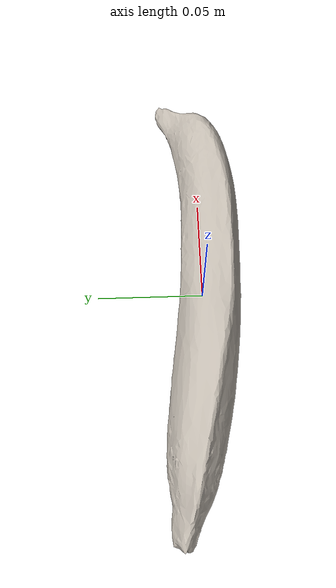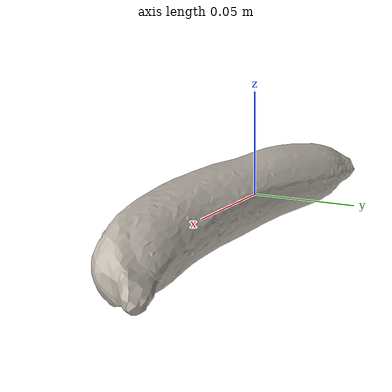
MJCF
<mujoco model="banana_efe0becd">
  <compiler angle="radian"/>
  <asset>
    <texture type="2d" name="banana_efe0becd_tex" file="banana_efe0becd_visual_0.png"/>
    <material name="banana_efe0becd_mat" texture="banana_efe0becd_tex"/>
    <mesh name="banana_efe0becd_visual" content_type="model/obj" file="banana_efe0becd_visual.obj" scale="-1.76854 1 1.2773"/>
    <mesh name="banana_efe0becd_c0" content_type="model/obj" file="banana_efe0becd_c0.obj" scale="-1.76854 1 1.2773"/>
    <mesh name="banana_efe0becd_c1" content_type="model/obj" file="banana_efe0becd_c1.obj" scale="-1.76854 1 1.2773"/>
  </asset>
  <worldbody>
    <body name="banana_efe0becd">
      <freejoint/>
      <geom name="banana_efe0becd_visual" type="mesh" mesh="banana_efe0becd_visual" mass="1e-8" contype="0" conaffinity="0" group="2" material="banana_efe0becd_mat"/>
      <geom name="banana_efe0becd_c0" type="mesh" mesh="banana_efe0becd_c0" group="3" density="690.766" friction="0.9 0.05 0.005" condim="4" rgba="0.4 0.5 0.9 0.35"/>
      <geom name="banana_efe0becd_c1" type="mesh" mesh="banana_efe0becd_c1" group="3" density="690.766" friction="0.9 0.05 0.005" condim="4" rgba="0.4 0.5 0.9 0.35"/>
    </body>
  </worldbody>
</mujoco>
